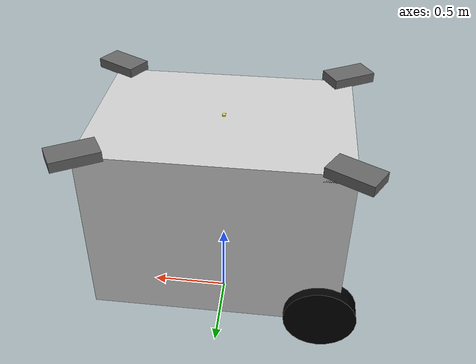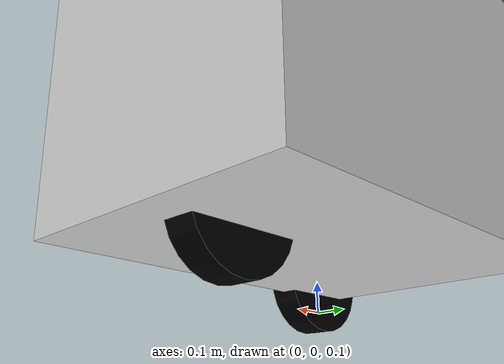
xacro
<?xml version="1.0"?>
<robot name="z200" xmlns:xacro="http://www.ros.org/wiki/xacro">

  <!-- base_footprint -->
  <link name="base_footprint" />

  <joint name="base_joint" type="fixed">
    <parent link="base_footprint" />
    <child link="base_link" />
    <origin xyz="0 0 0.85" rpy="0 0 0" />
  </joint>

  <!-- base_link -->
  <link name="base_link">
    <!-- 车身主体（前后左右）- 浅灰色 -->
    <visual>
      <geometry>
        <box size="1.52 1.05 1.10" />
      </geometry>
      <material name="light_gray">
        <color rgba="0.8 0.8 0.8 1.0" />
      </material>
    </visual>

    <!-- 车顶 - 深灰色 -->
    <visual>
      <geometry>
        <box size="1.52 1.05 0.05" />
      </geometry>
      <origin xyz="0 0 0.525" />
      <material name="dark_gray">
        <color rgba="0.4 0.4 0.4 1.0" />
      </material>
    </visual>

    <collision>
      <geometry>
        <box size="1.52 1.05 1.10" />
      </geometry>
    </collision>

    <inertial>
      <mass value="120.0" />
      <inertia ixx="30" iyy="50" izz="60"
        ixy="0" ixz="0" iyz="0" />
    </inertial>
  </link>

  <!-- Left passive wheel (no drive) -->
  <link name="left_wheel_link">
    <visual>
      <origin rpy="1.5708 0 0" />
      <geometry>
        <cylinder radius="0.22" length="0.12" />
      </geometry>
      <material name="black">
        <color rgba="0.0 0.0 0.0 1.0" />
      </material>
    </visual>
    <collision>
      <origin rpy="1.5708 0 0" />
      <geometry>
        <cylinder radius="0.22" length="0.12" />
      </geometry>
    </collision>
    <inertial>
      <mass value="20.0" />
      <inertia ixx="0.2" iyy="0.2" izz="0.2"
        ixy="0" ixz="0" iyz="0" />
    </inertial>
  </link>

  <joint name="left_wheel_joint" type="continuous">
    <parent link="base_link" />
    <child link="left_wheel_link" />
    <origin xyz="-0.65 0.524 -0.487" />
    <axis xyz="0 1 0" />
    <!-- 后轮为被动轮，不提供动力 -->
  </joint>

  <!-- Right passive wheel (no drive) -->
  <link name="right_wheel_link">
    <visual>
      <origin rpy="1.5708 0 0" />
      <geometry>
        <cylinder radius="0.22" length="0.12" />
      </geometry>
      <material name="black">
        <color rgba="0.0 0.0 0.0 1.0" />
      </material>
    </visual>
    <collision>
      <origin rpy="1.5708 0 0" />
      <geometry>
        <cylinder radius="0.22" length="0.12" />
      </geometry>
    </collision>
    <inertial>
      <mass value="20.0" />
      <inertia ixx="0.2" iyy="0.2" izz="0.2"
        ixy="0" ixz="0" iyz="0" />
    </inertial>
  </link>

  <joint name="right_wheel_joint" type="continuous">
    <parent link="base_link" />
    <child link="right_wheel_link" />
    <origin xyz="-0.65 -0.524 -0.487" />
    <axis xyz="0 1 0" />
    <!-- 后轮为被动轮，不提供动力 -->
  </joint>

  <!-- Front wheel assembly with steering -->

  <!-- Front wheel axis -->
  <!-- 1. Steering column (for vertical rotation - steering) -->
  <link name="front_steering_column">
    <visual>
      <geometry>
        <cylinder radius="0.05" length="0.3" />
      </geometry>
      <material name="black">
        <color rgba="0.0 0.0 0.0 1.0" />
      </material>
    </visual>
    <inertial>
      <mass value="10.0" />
      <inertia ixx="0.01" iyy="0.01" izz="0.01"
        ixy="0" ixz="0" iyz="0" />
    </inertial>
  </link>

  <!-- Steering joint (vertical rotation - around Z axis) -->
  <joint name="front_steering_joint" type="revolute">
    <parent link="base_link" />
    <child link="front_steering_column" />
    <origin xyz="0.4 0 -0.487" />
    <axis xyz="0 0 1" />
    <!-- 限制转向角度为±50° (0.8727弧度) -->
    <limit lower="-0.8727" upper="0.8727" effort="100.0" velocity="2.0" />
  </joint>

  <!-- 2. Front wheel (for rolling) -->
  <link name="front_support_wheel_link">
    <visual>
      <origin rpy="1.5708 0 0" />
      <geometry>
        <cylinder radius="0.22" length="0.12" />
      </geometry>
      <material name="black">
        <color rgba="0.0 0.0 0.0 1.0" />
      </material>
    </visual>
    <collision>
      <origin rpy="1.5708 0 0" />
      <geometry>
        <cylinder radius="0.22" length="0.12" />
      </geometry>
    </collision>
    <inertial>
      <mass value="20.0" />
      <inertia ixx="0.2" iyy="0.2" izz="0.2"
        ixy="0" ixz="0" iyz="0" />
    </inertial>
  </link>

  <!-- Rolling joint (around Y axis) -->
    <joint name="front_wheel_joint" type="continuous">
      <parent link="front_steering_column" />
      <child link="front_support_wheel_link" />
      <origin xyz="0 0 0" />
      <axis xyz="0 1 0" />
    </joint>

  <gazebo reference="front_support_wheel_link">
    <material>Gazebo/Black</material>
  </gazebo>

  <!-- Decorative corner parts (visual only) -->
  <link name="corner_fl">
    <visual>
      <origin xyz="0.735 0.544 0.577" rpy="0 0 0.5236" />
      <geometry>
        <box size="0.28 0.16 0.06" />
      </geometry>
      <material name="dark_gray">
        <color rgba="0.4 0.4 0.4 1.0" />
      </material>
    </visual>
  </link>
  <joint name="corner_fl_joint" type="fixed">
    <parent link="base_link" />
    <child link="corner_fl" />
  </joint>

  <link name="corner_fr">
    <visual>
      <origin xyz="0.735 -0.544 0.577" rpy="0 0 -0.5236" />
      <geometry>
        <box size="0.28 0.16 0.06" />
      </geometry>
      <material name="dark_gray">
        <color rgba="0.4 0.4 0.4 1.0" />
      </material>
    </visual>
  </link>
  <joint name="corner_fr_joint" type="fixed">
    <parent link="base_link" />
    <child link="corner_fr" />
  </joint>

  <link name="corner_rl">
    <visual>
      <origin xyz="-0.735 0.544 0.577" rpy="0 0 -0.5236" />
      <geometry>
        <box size="0.28 0.16 0.06" />
      </geometry>
      <material name="dark_gray">
        <color rgba="0.4 0.4 0.4 1.0" />
      </material>
    </visual>
  </link>
  <joint name="corner_rl_joint" type="fixed">
    <parent link="base_link" />
    <child link="corner_rl" />
  </joint>

  <link name="corner_rr">
    <visual>
      <origin xyz="-0.735 -0.544 0.577" rpy="0 0 0.5236" />
      <geometry>
        <box size="0.28 0.16 0.06" />
      </geometry>
      <material name="dark_gray">
        <color rgba="0.4 0.4 0.4 1.0" />
      </material>
    </visual>
  </link>
  <joint name="corner_rr_joint" type="fixed">
    <parent link="base_link" />
    <child link="corner_rr" />
  </joint>

  <!-- Gazebo friction -->
  <gazebo reference="left_wheel_link">
    <mu1>1.0</mu1>
    <mu2>1.0</mu2>
  </gazebo>

  <gazebo reference="right_wheel_link">
    <mu1>1.0</mu1>
    <mu2>1.0</mu2>
  </gazebo>

  <gazebo reference="front_support_wheel_link">
    <mu1>0.8</mu1>
    <mu2>0.8</mu2>
  </gazebo>

  <gazebo>
    <plugin name="tricycle_drive" filename="libgazebo_ros_tricycle_drive.so">
      <update_rate>50</update_rate>
      <drive_joint>left_wheel_joint</drive_joint>
      <drive_joint>right_wheel_joint</drive_joint>
      <wheel_diameter>0.44</wheel_diameter>
      <wheel_separation>1.048</wheel_separation>
      <steering_joint>front_steering_joint</steering_joint>
      <robot_base_frame>base_footprint</robot_base_frame>
      <odometry_frame>odom</odometry_frame>
      <command_topic>/cmd_vel</command_topic>
      <publish_odom>true</publish_odom>
      <publish_odom_tf>true</publish_odom_tf>
      <max_steer_angle>0.8727</max_steer_angle>
      <max_wheel_torque>600.0</max_wheel_torque>
    </plugin>

    <plugin name='z200_joint_state' filename='libgazebo_ros_joint_state_publisher.so'>
      <ros>
        <remapping>~/out:=joint_states</remapping>
      </ros>
      <update_rate>30</update_rate>
      <joint_name>right_wheel_joint</joint_name>
      <joint_name>left_wheel_joint</joint_name>
      <joint_name>front_steering_joint</joint_name>
    </plugin>
  </gazebo>

  <!-- Gazebo材料配置 -->
  <gazebo reference="base_link">
    <material>Gazebo/Gray</material>
  </gazebo>

  <gazebo reference="left_wheel_link">
    <material>Gazebo/Black</material>
  </gazebo>

  <gazebo reference="right_wheel_link">
    <material>Gazebo/Black</material>
  </gazebo>

  <gazebo reference="front_support_wheel_link">
    <material>Gazebo/Black</material>
  </gazebo>

  <gazebo reference="front_steering_column">
    <material>Gazebo/Black</material>
  </gazebo>

  <gazebo reference="corner_fl">
    <material>Gazebo/DarkGray</material>
  </gazebo>

  <gazebo reference="corner_fr">
    <material>Gazebo/DarkGray</material>
  </gazebo>

  <gazebo reference="corner_rl">
    <material>Gazebo/DarkGray</material>
  </gazebo>

  <gazebo reference="corner_rr">
    <material>Gazebo/DarkGray</material>
  </gazebo>

  <!-- Laser scanner -->
  <link name="laser_link">
    <visual>
      <geometry>
        <cylinder radius="0.05" length="0.1" />
      </geometry>
      <material name="red">
        <color rgba="1.0 0.0 0.0 1.0" />
      </material>
    </visual>
    <collision>
      <geometry>
        <cylinder radius="0.05" length="0.1" />
      </geometry>
    </collision>
    <inertial>
      <mass value="0.5" />
      <inertia ixx="0.0001" iyy="0.0001" izz="0.0001"
        ixy="0" ixz="0" iyz="0" />
    </inertial>
  </link>
  <!-- laser joint - 移到车身中心 -->
  <joint name="laser_joint" type="fixed">
    <parent link="base_link" />
    <child link="laser_link" />
    <!-- 车身中心位置，保持高度不变 -->
    <origin xyz="0 0 0.125" rpy="0 0 0" />
  </joint>

  <!-- IMU link -->
  <link name="imu_link">
    <visual>
      <origin xyz="0 0 0.0" rpy="0 0 0" />
      <geometry>
        <box size="0.02 0.02 0.02" />
      </geometry>
    </visual>
    <collision>
      <origin xyz="0 0 0.0" rpy="0 0 0" />
      <geometry>
        <box size="0.02 0.02 0.02" />
      </geometry>
    </collision>
    <inertial>
      <mass value="0.1" />
      <inertia ixx="0.000190416666667" ixy="0" ixz="0" iyy="0.0001904" iyz="0" izz="0.00036" />
    </inertial>
  </link>

  <!-- IMU joint -->
  <joint name="imu_joint" type="fixed">
    <parent link="base_link" />
    <child link="imu_link" />
    <!-- 车顶中央位置 -->
    <origin xyz="0 0 0.55" rpy="0 0 0" />
  </joint>

  <!-- 激光雷达配置 - 改进版：穿透车体，排除车身区域 -->
  <gazebo reference="laser_link">
    <material>Gazebo/Red</material>
    <!-- 设置激光雷达不检测自身link的碰撞，实现穿透车体 -->
    <collision>
      <surface>
        <contact>
          <collide_bitmask>0x00</collide_bitmask>
        </contact>
      </surface>
    </collision>
    <sensor name="laser_sensor" type="ray">
      <always_on>true</always_on>
      <visualize>true</visualize>
      <update_rate>5</update_rate>
      <pose>0 0 0 0 0 0</pose>
      <ray>
        <scan>
          <horizontal>
            <samples>180</samples>
            <resolution>1.000000</resolution>
            <!-- 360度全向扫描 -->
            <min_angle>-3.14159265</min_angle>  <!-- -180° in radians -->
            <max_angle>3.14159265</max_angle>    <!-- +180° in radians -->
          </horizontal>
        </scan>
        <range>
          <!-- 最小距离设置为0.9米，排除车身区域（车身半对角线约0.9米） -->
          <min>1.05</min>
          <max>30</max>
          <resolution>0.03000</resolution>
        </range>
        <noise>
          <type>gaussian</type>
          <mean>0.0</mean>
          <stddev>0.01</stddev>
        </noise>
      </ray>

      <plugin name="laserscan" filename="libgazebo_ros_ray_sensor.so">
        <ros>
          <remapping>~/out:=scan</remapping>
        </ros>
        <output_type>sensor_msgs/LaserScan</output_type>
        <frame_name>laser_link</frame_name>
      </plugin>
    </sensor>
  </gazebo>

  <gazebo reference="imu_link">
    <sensor name="imu_sensor" type="imu">
      <plugin filename="libgazebo_ros_imu_sensor.so" name="imu_plugin">
        <ros>
          <namespace>/</namespace>
          <remapping>~/out:=imu</remapping>
        </ros>
        <initial_orientation_as_reference>false</initial_orientation_as_reference>
      </plugin>
      <always_on>true</always_on>
      <update_rate>100</update_rate>
      <visualize>true</visualize>
      <imu>
        <angular_velocity>
          <x>
            <noise type="gaussian">
              <mean>0.0</mean>
              <stddev>2e-4</stddev>
              <bias_mean>0.0000075</bias_mean>
              <bias_stddev>0.0000008</bias_stddev>
            </noise>
          </x>
          <y>
            <noise type="gaussian">
              <mean>0.0</mean>
              <stddev>2e-4</stddev>
              <bias_mean>0.0000075</bias_mean>
              <bias_stddev>0.0000008</bias_stddev>
            </noise>
          </y>
          <z>
            <noise type="gaussian">
              <mean>0.0</mean>
              <stddev>2e-4</stddev>
              <bias_mean>0.0000075</bias_mean>
              <bias_stddev>0.0000008</bias_stddev>
            </noise>
          </z>
        </angular_velocity>
        <linear_acceleration>
          <x>
            <noise type="gaussian">
              <mean>0.0</mean>
              <stddev>1.7e-2</stddev>
              <bias_mean>0.1</bias_mean>
              <bias_stddev>0.001</bias_stddev>
            </noise>
          </x>
          <y>
            <noise type="gaussian">
              <mean>0.0</mean>
              <stddev>1.7e-2</stddev>
              <bias_mean>0.1</bias_mean>
              <bias_stddev>0.001</bias_stddev>
            </noise>
          </y>
          <z>
            <noise type="gaussian">
              <mean>0.0</mean>
              <stddev>1.7e-2</stddev>
              <bias_mean>0.1</bias_mean>
              <bias_stddev>0.001</bias_stddev>
            </noise>
          </z>
        </linear_acceleration>
      </imu>
    </sensor>
  </gazebo>

</robot>
